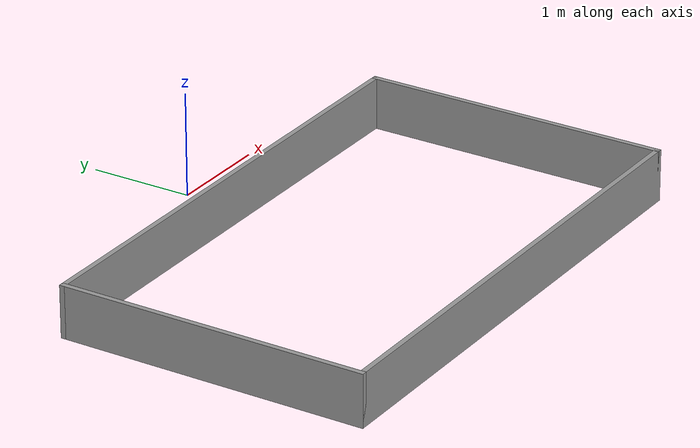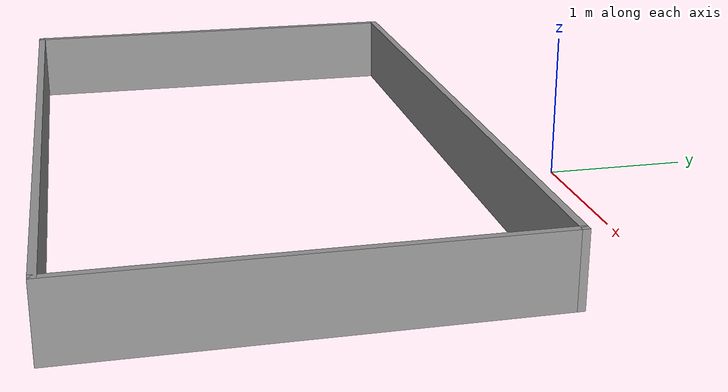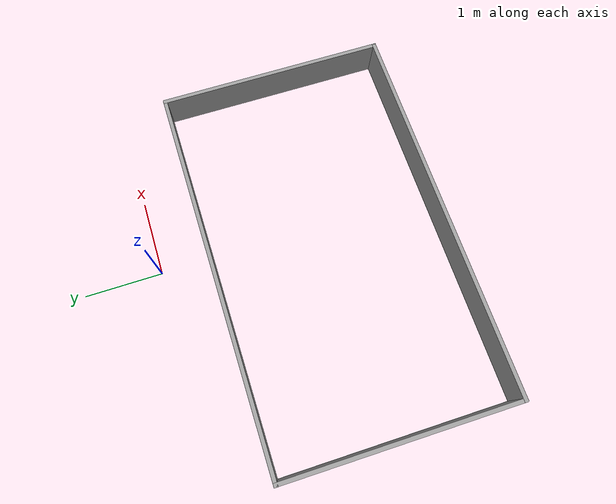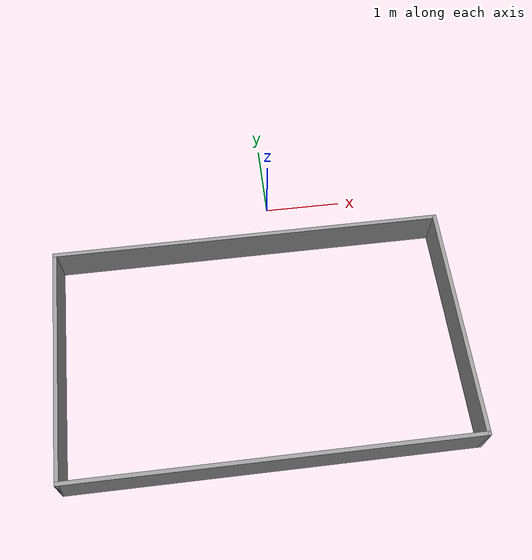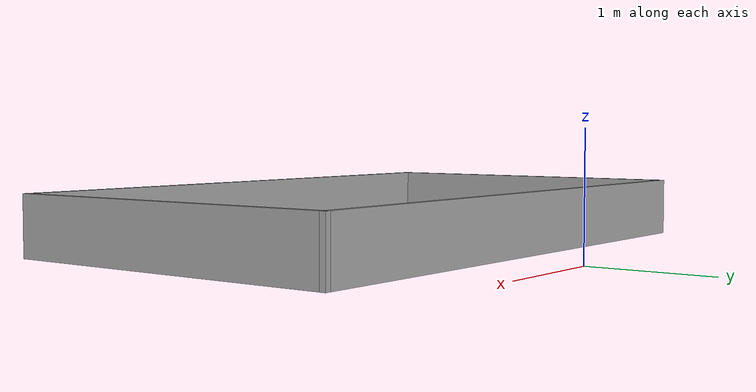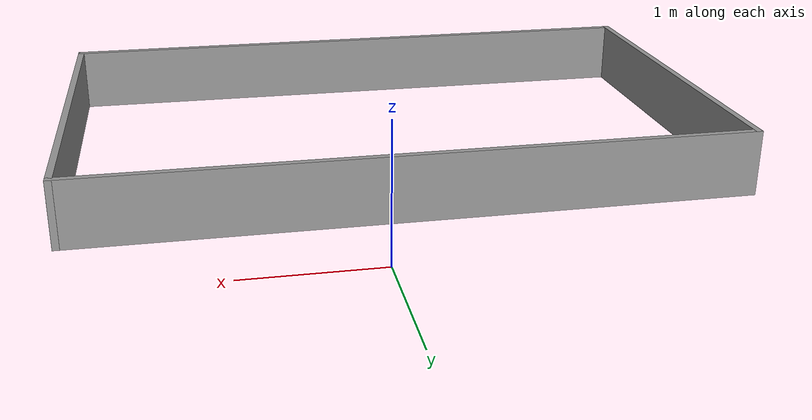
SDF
<?xml version='1.0'?>
<sdf version='1.6'>
  <model name='parkingwalls'>
    <pose frame=''>-0.346 -2.135 0 0 -0 0</pose>
    <link name='Wall_0'>
      <collision name='Wall_0_Collision'>
        <geometry>
          <box>
            <size>5 0.05 0.5</size>
          </box>
        </geometry>
        <pose frame=''>0 0 0.25 0 -0 0</pose>
      </collision>
      <visual name='Wall_0_Visual'>
        <pose frame=''>0 0 0.25 0 -0 0</pose>
        <geometry>
          <box>
            <size>5 0.05 0.5</size>
          </box>
        </geometry>
        <material>
          <script>
            <uri>file://media/materials/scripts/gazebo.material</uri>
            <name>Gazebo/Grey</name>
          </script>
          <ambient>1 1 1 1</ambient>
        </material>
        <meta>
          <layer>0</layer>
        </meta>
      </visual>
      <pose frame=''>0 -1.475 0 0 -0 0</pose>
    </link>
    <link name='Wall_1'>
      <collision name='Wall_1_Collision'>
        <geometry>
          <box>
            <size>3 0.05 0.5</size>
          </box>
        </geometry>
        <pose frame=''>0 0 0.25 0 -0 0</pose>
      </collision>
      <visual name='Wall_1_Visual'>
        <pose frame=''>0 0 0.25 0 -0 0</pose>
        <geometry>
          <box>
            <size>3 0.05 0.5</size>
          </box>
        </geometry>
        <material>
          <script>
            <uri>file://media/materials/scripts/gazebo.material</uri>
            <name>Gazebo/Grey</name>
          </script>
          <ambient>1 1 1 1</ambient>
        </material>
        <meta>
          <layer>0</layer>
        </meta>
      </visual>
      <pose frame=''>2.475 0 0 0 -0 1.5708</pose>
    </link>
    <link name='Wall_2'>
      <collision name='Wall_2_Collision'>
        <geometry>
          <box>
            <size>5 0.05 0.5</size>
          </box>
        </geometry>
        <pose frame=''>0 0 0.25 0 -0 0</pose>
      </collision>
      <visual name='Wall_2_Visual'>
        <pose frame=''>0 0 0.25 0 -0 0</pose>
        <geometry>
          <box>
            <size>5 0.05 0.5</size>
          </box>
        </geometry>
        <material>
          <script>
            <uri>file://media/materials/scripts/gazebo.material</uri>
            <name>Gazebo/Grey</name>
          </script>
          <ambient>1 1 1 1</ambient>
        </material>
        <meta>
          <layer>0</layer>
        </meta>
      </visual>
      <pose frame=''>0 1.475 0 0 -0 3.14159</pose>
    </link>
    <link name='Wall_3'>
      <collision name='Wall_3_Collision'>
        <geometry>
          <box>
            <size>3 0.05 0.5</size>
          </box>
        </geometry>
        <pose frame=''>0 0 0.25 0 -0 0</pose>
      </collision>
      <visual name='Wall_3_Visual'>
        <pose frame=''>0 0 0.25 0 -0 0</pose>
        <geometry>
          <box>
            <size>3 0.05 0.5</size>
          </box>
        </geometry>
        <material>
          <script>
            <uri>file://media/materials/scripts/gazebo.material</uri>
            <name>Gazebo/Grey</name>
          </script>
          <ambient>1 1 1 1</ambient>
        </material>
        <meta>
          <layer>0</layer>
        </meta>
      </visual>
      <pose frame=''>-2.475 0 0 0 -0 -1.5708</pose>
    </link>
    <static>1</static>
  </model>
</sdf>
